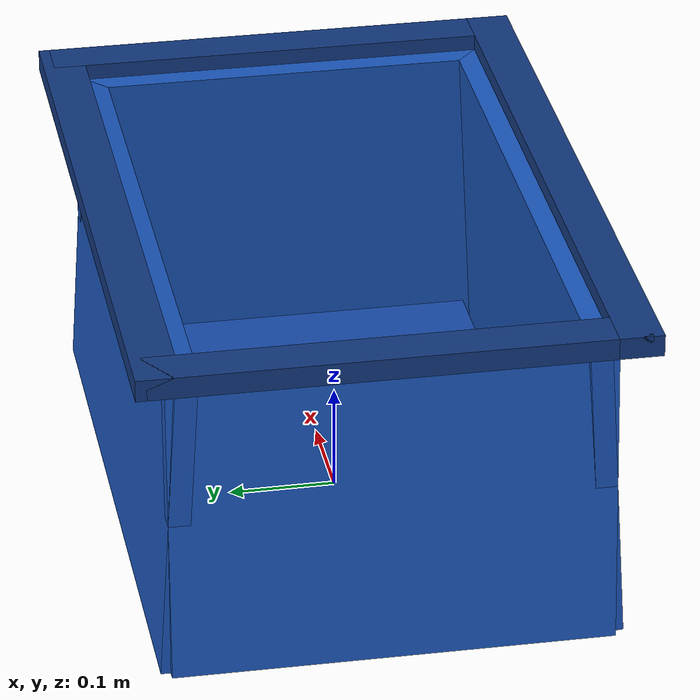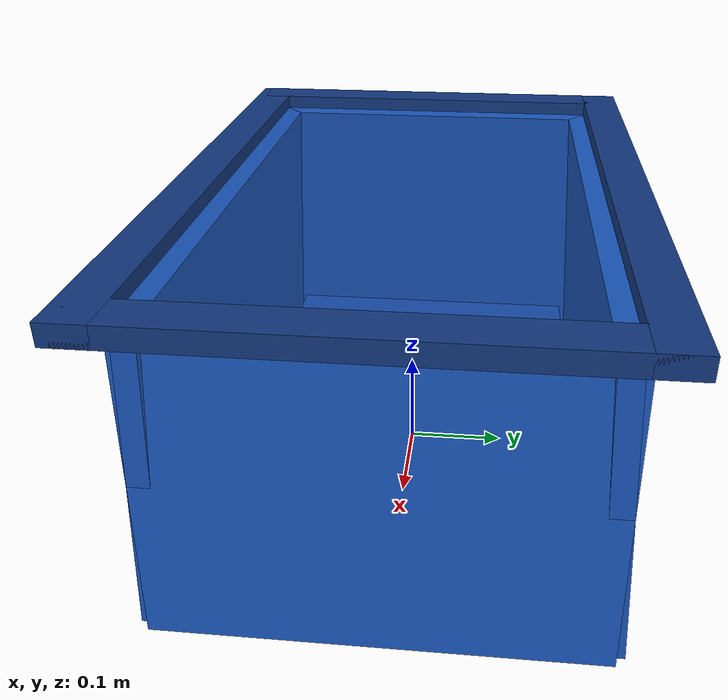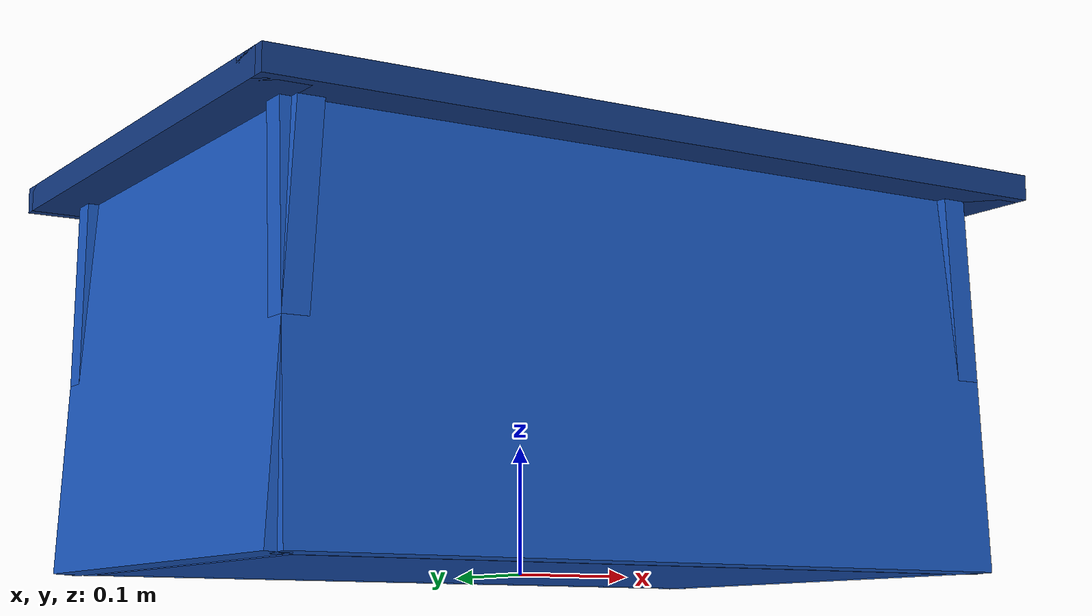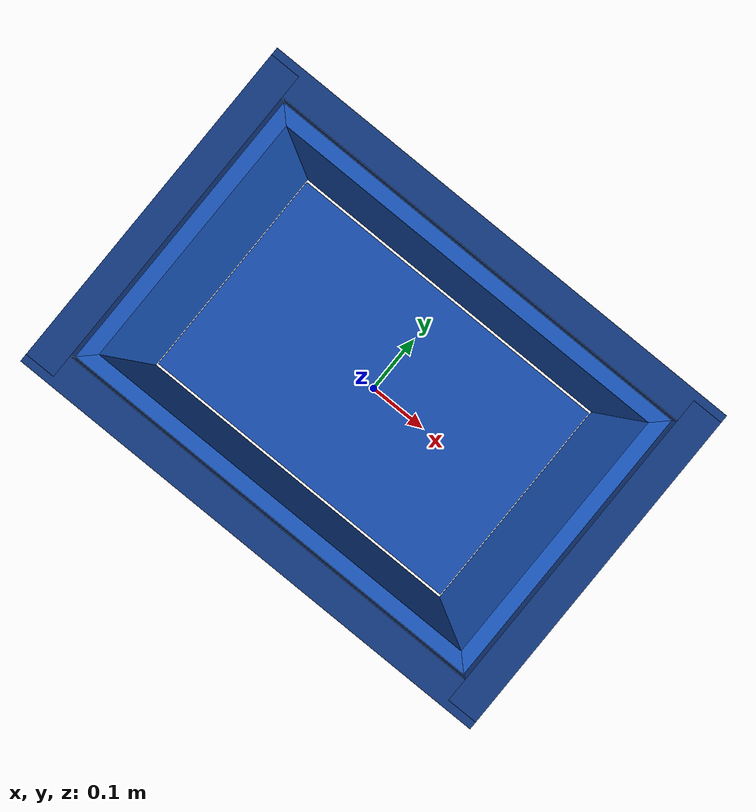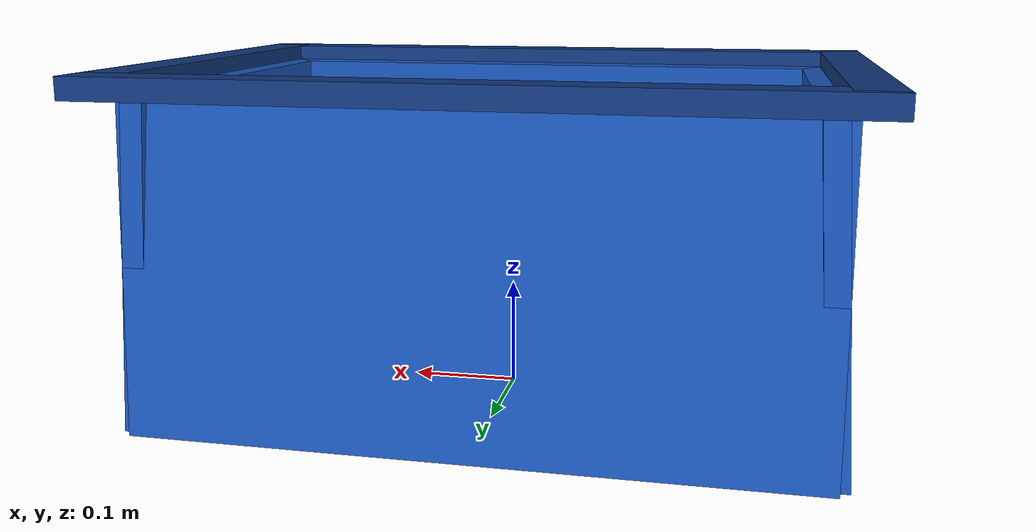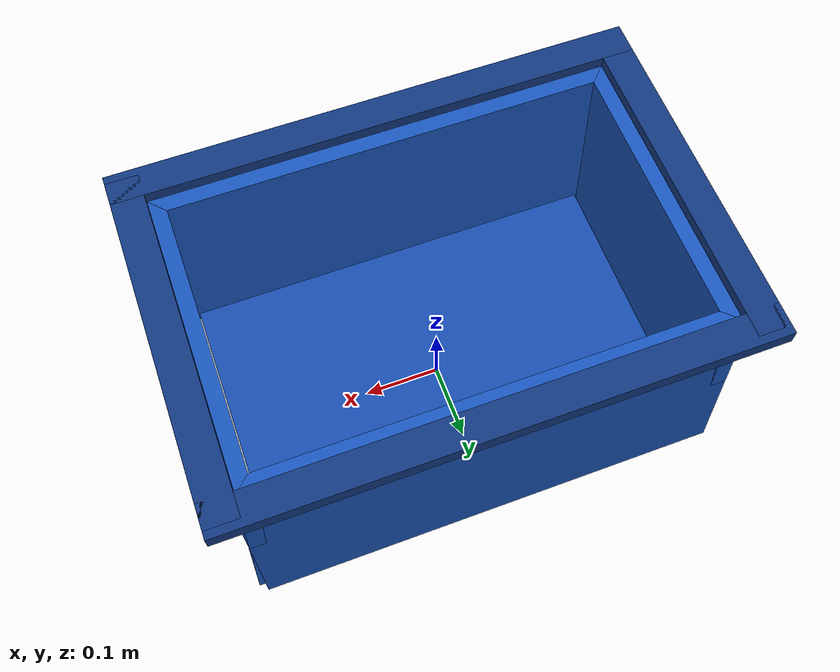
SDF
<?xml version="1.0"?>
<sdf version="1.7">
  <model name="blue_tub">
    <static>1</static>
    <allow_auto_disable>1</allow_auto_disable>

    <link name="link">
      <inertial>
        <mass>1</mass>
        <pose>0 0 0.15 0 0 0</pose>
        <inertia>
          <ixx>0.02</ixx><ixy>0</ixy><ixz>0</ixz>
          <iyy>0.04</iyy><iyz>0</iyz>
          <izz>0.05</izz>
        </inertia>
      </inertial>

      <visual name="floor">
        <pose>0 0 0.015 0 0 0</pose>
        <geometry><box><size>0.56 0.36 0.03</size></box></geometry>
        <material>
          <ambient>0.03 0.08 0.20 1</ambient>
          <diffuse>0.09 0.30 0.68 1</diffuse>
          <specular>0.04 0.04 0.04 1</specular>
        </material>
      </visual>

      <visual name="wall_x_pos">
        <pose>0.29 0 0.15 0 -0.06 0</pose>
        <geometry><box><size>0.02 0.40 0.30</size></box></geometry>
        <material>
          <ambient>0.03 0.09 0.22 1</ambient>
          <diffuse>0.10 0.34 0.74 1</diffuse>
          <specular>0.04 0.04 0.04 1</specular>
        </material>
      </visual>
      <visual name="wall_x_neg">
        <pose>-0.29 0 0.15 0 0.06 0</pose>
        <geometry><box><size>0.02 0.40 0.30</size></box></geometry>
        <material>
          <ambient>0.03 0.09 0.22 1</ambient>
          <diffuse>0.10 0.34 0.74 1</diffuse>
          <specular>0.04 0.04 0.04 1</specular>
        </material>
      </visual>
      <visual name="wall_y_pos">
        <pose>0 0.19 0.15 0.06 0 0</pose>
        <geometry><box><size>0.60 0.02 0.30</size></box></geometry>
        <material>
          <ambient>0.03 0.09 0.22 1</ambient>
          <diffuse>0.10 0.34 0.74 1</diffuse>
          <specular>0.04 0.04 0.04 1</specular>
        </material>
      </visual>
      <visual name="wall_y_neg">
        <pose>0 -0.19 0.15 -0.06 0 0</pose>
        <geometry><box><size>0.60 0.02 0.30</size></box></geometry>
        <material>
          <ambient>0.03 0.09 0.22 1</ambient>
          <diffuse>0.10 0.34 0.74 1</diffuse>
          <specular>0.04 0.04 0.04 1</specular>
        </material>
      </visual>

      <visual name="rim_x_pos">
        <pose>0.31 0 0.305 0 0 0</pose>
        <geometry><box><size>0.04 0.44 0.02</size></box></geometry>
        <material>
          <ambient>0.02 0.06 0.15 1</ambient>
          <diffuse>0.07 0.22 0.50 1</diffuse>
          <specular>0.06 0.06 0.06 1</specular>
        </material>
      </visual>
      <visual name="rim_x_neg">
        <pose>-0.31 0 0.305 0 0 0</pose>
        <geometry><box><size>0.04 0.44 0.02</size></box></geometry>
        <material>
          <ambient>0.02 0.06 0.15 1</ambient>
          <diffuse>0.07 0.22 0.50 1</diffuse>
          <specular>0.06 0.06 0.06 1</specular>
        </material>
      </visual>
      <visual name="rim_y_pos">
        <pose>0 0.21 0.305 0 0 0</pose>
        <geometry><box><size>0.66 0.04 0.02</size></box></geometry>
        <material>
          <ambient>0.02 0.06 0.15 1</ambient>
          <diffuse>0.07 0.22 0.50 1</diffuse>
          <specular>0.06 0.06 0.06 1</specular>
        </material>
      </visual>
      <visual name="rim_y_neg">
        <pose>0 -0.21 0.305 0 0 0</pose>
        <geometry><box><size>0.66 0.04 0.02</size></box></geometry>
        <material>
          <ambient>0.02 0.06 0.15 1</ambient>
          <diffuse>0.07 0.22 0.50 1</diffuse>
          <specular>0.06 0.06 0.06 1</specular>
        </material>
      </visual>

      <collision name="floor_collision">
        <pose>0 0 0.015 0 0 0</pose>
        <geometry><box><size>0.60 0.40 0.03</size></box></geometry>
      </collision>
      <collision name="wall_x_pos_collision">
        <pose>0.29 0 0.15 0 0 0</pose>
        <geometry><box><size>0.03 0.40 0.30</size></box></geometry>
      </collision>
      <collision name="wall_x_neg_collision">
        <pose>-0.29 0 0.15 0 0 0</pose>
        <geometry><box><size>0.03 0.40 0.30</size></box></geometry>
      </collision>
      <collision name="wall_y_pos_collision">
        <pose>0 0.19 0.15 0 0 0</pose>
        <geometry><box><size>0.60 0.03 0.30</size></box></geometry>
      </collision>
      <collision name="wall_y_neg_collision">
        <pose>0 -0.19 0.15 0 0 0</pose>
        <geometry><box><size>0.60 0.03 0.30</size></box></geometry>
      </collision>
    </link>
  </model>
</sdf>
